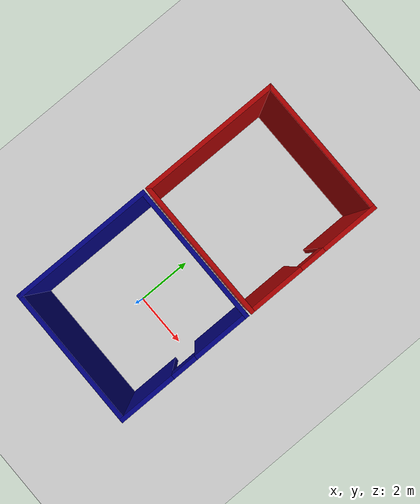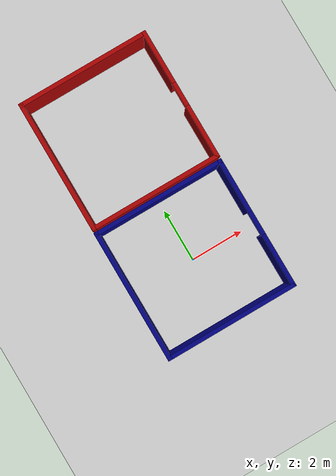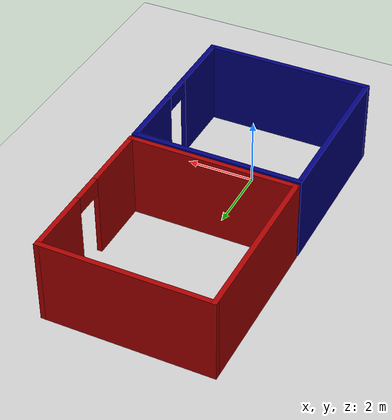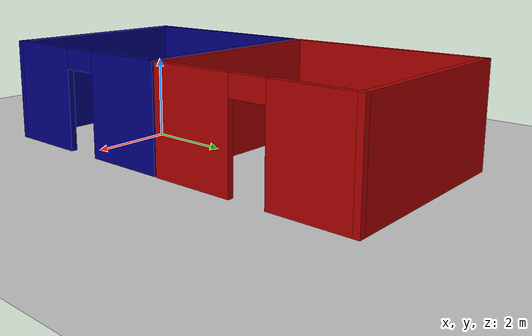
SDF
<sdf version="1.6">
 <world name="default">
  <model name="ground_plane">
   <static>1</static>
   <link name="link">
    <collision name="collision">
     <geometry><plane><normal>0 0 1</normal><size>100 100</size></plane></geometry>
     <surface>
      <contact><collide_bitmask>65535</collide_bitmask></contact>
      <friction><ode><mu>100</mu><mu2>50</mu2></ode></friction>
     </surface>
    </collision>
    <visual name="visual">
     <cast_shadows>0</cast_shadows>
     <geometry><plane><normal>0 0 1</normal><size>100 100</size></plane></geometry>
     <material>
      <script><uri>file://media/materials/scripts/gazebo.material</uri><name>Gazebo/Grey</name></script>
     </material>
    </visual>
   </link>
  </model>
  <light name="sun" type="directional">
   <pose>0 0 10 0 -0 0</pose>
   <diffuse>0.8 0.8 0.8 1</diffuse>
   <specular>0.2 0.2 0.2 1</specular>
   <attenuation>
    <range>1000</range>
    <constant>0.9</constant>
    <linear>0.01</linear>
    <quadratic>0.001</quadratic>
   </attenuation>
   <direction>-0.5 0.1 -0.9</direction>
  </light>
  <gravity>0 0 -9.8</gravity>
  <magnetic_field>6e-06 2.3e-05 -4.2e-05</magnetic_field>
  <atmosphere type="adiabatic"/>
  <physics name="default_physics" default="0" type="ode">
   <max_step_size>0.001</max_step_size>
   <real_time_factor>1</real_time_factor>
   <real_time_update_rate>1000</real_time_update_rate>
  </physics>
  <scene><ambient>0.4 0.4 0.4 1</ambient><background>0.7 0.7 0.7 1</background><shadows>1</shadows></scene>
  <spherical_coordinates>
   <surface_model>EARTH_WGS84</surface_model>
   <latitude_deg>0</latitude_deg>
   <longitude_deg>0</longitude_deg>
   <elevation>0</elevation>
   <heading_deg>0</heading_deg>
  </spherical_coordinates>
  <model name="blue_5m_room">
   <link name="Wall_0">
    <collision name="Wall_0_Collision">
     <geometry><box><size>5 0.15 2.5</size></box></geometry>
     <pose>0 0 1.25 0 -0 0</pose>
    </collision>
    <visual name="Wall_0_Visual">
     <pose>0 0 1.25 0 -0 0</pose>
     <geometry><box><size>5 0.15 2.5</size></box></geometry>
     <material>
      <script><uri>file://media/materials/scripts/gazebo.material</uri><name>Gazebo/Grey</name></script>
      <ambient>0 0 0.498039 1</ambient>
     </material>
     <meta><layer>0</layer></meta>
    </visual>
    <pose>-2.425 0 0 0 -0 1.5708</pose>
   </link>
   <link name="Wall_1">
    <collision name="Wall_1_Collision">
     <geometry><box><size>5 0.15 2.5</size></box></geometry>
     <pose>0 0 1.25 0 -0 0</pose>
    </collision>
    <visual name="Wall_1_Visual">
     <pose>0 0 1.25 0 -0 0</pose>
     <geometry><box><size>5 0.15 2.5</size></box></geometry>
     <material>
      <script><uri>file://media/materials/scripts/gazebo.material</uri><name>Gazebo/Grey</name></script>
      <ambient>0 0 0.498039 1</ambient>
     </material>
     <meta><layer>0</layer></meta>
    </visual>
    <pose>0 2.425 0 0 -0 0</pose>
   </link>
   <link name="Wall_2">
    <pose>2.425 0 0 0 0 -1.5708</pose>
    <visual name="Wall_2_Visual_0">
     <pose>-1.47363 0 1.25 0 -0 0</pose>
     <geometry><box><size>2.05274 0.15 2.5</size></box></geometry>
     <material>
      <script><uri>file://media/materials/scripts/gazebo.material</uri><name>Gazebo/Grey</name></script>
      <ambient>0 0 0.498039 1</ambient>
     </material>
     <meta><layer>0</layer></meta>
    </visual>
    <collision name="Wall_2_Collision_0">
     <geometry><box><size>2.05274 0.15 2.5</size></box></geometry>
     <pose>-1.47363 0 1.25 0 -0 0</pose>
    </collision>
    <visual name="Wall_2_Visual_1">
     <pose>1.47637 0 1.25 0 -0 0</pose>
     <geometry><box><size>2.04726 0.15 2.5</size></box></geometry>
     <material>
      <script><uri>file://media/materials/scripts/gazebo.material</uri><name>Gazebo/Grey</name></script>
      <ambient>0 0 0.498039 1</ambient>
     </material>
     <meta><layer>0</layer></meta>
    </visual>
    <collision name="Wall_2_Collision_1">
     <geometry><box><size>2.04726 0.15 2.5</size></box></geometry>
     <pose>1.47637 0 1.25 0 -0 0</pose>
    </collision>
    <visual name="Wall_2_Visual_2">
     <pose>0.00274 0 2.25 0 -0 0</pose>
     <geometry><box><size>0.9 0.15 0.5</size></box></geometry>
     <material>
      <script><uri>file://media/materials/scripts/gazebo.material</uri><name>Gazebo/Grey</name></script>
      <ambient>0 0 0.498039 1</ambient>
     </material>
     <meta><layer>0</layer></meta>
    </visual>
    <collision name="Wall_2_Collision_2">
     <geometry><box><size>0.9 0.15 0.5</size></box></geometry>
     <pose>0.00274 0 2.25 0 -0 0</pose>
    </collision>
   </link>
   <link name="Wall_3">
    <collision name="Wall_3_Collision">
     <geometry><box><size>5 0.15 2.5</size></box></geometry>
     <pose>0 0 1.25 0 -0 0</pose>
    </collision>
    <visual name="Wall_3_Visual">
     <pose>0 0 1.25 0 -0 0</pose>
     <geometry><box><size>5 0.15 2.5</size></box></geometry>
     <material>
      <script><uri>file://media/materials/scripts/gazebo.material</uri><name>Gazebo/Grey</name></script>
      <ambient>0 0 0.498039 1</ambient>
     </material>
     <meta><layer>0</layer></meta>
    </visual>
    <pose>0 -2.425 0 0 -0 3.14159</pose>
   </link>
   <static>1</static>
  </model>
  <model name="red_5m_room">
   <pose>0.00931 5.0624 0 0 -0 0</pose>
   <link name="Wall_5">
    <collision name="Wall_5_Collision">
     <geometry><box><size>5 0.15 2.5</size></box></geometry>
     <pose>0 0 1.25 0 -0 0</pose>
    </collision>
    <visual name="Wall_5_Visual">
     <pose>0 0 1.25 0 -0 0</pose>
     <geometry><box><size>5 0.15 2.5</size></box></geometry>
     <material>
      <script><uri>file://media/materials/scripts/gazebo.material</uri><name>Gazebo/Grey</name></script>
      <ambient>0.666667 0 0 1</ambient>
     </material>
     <meta><layer>0</layer></meta>
    </visual>
    <pose>-2.425 0 0 0 0 -1.5708</pose>
   </link>
   <link name="Wall_6">
    <collision name="Wall_6_Collision">
     <geometry><box><size>5 0.15 2.5</size></box></geometry>
     <pose>0 0 1.25 0 -0 0</pose>
    </collision>
    <visual name="Wall_6_Visual">
     <pose>0 0 1.25 0 -0 0</pose>
     <geometry><box><size>5 0.15 2.5</size></box></geometry>
     <material>
      <script><uri>file://media/materials/scripts/gazebo.material</uri><name>Gazebo/Grey</name></script>
      <ambient>0.666667 0 0 1</ambient>
     </material>
     <meta><layer>0</layer></meta>
    </visual>
    <pose>0 -2.425 0 0 -0 0</pose>
   </link>
   <link name="Wall_7">
    <pose>2.425 0 0 0 -0 1.5708</pose>
    <visual name="Wall_7_Visual_0">
     <pose>-1.46931 0 1.25 0 -0 0</pose>
     <geometry><box><size>2.06137 0.15 2.5</size></box></geometry>
     <material>
      <script><uri>file://media/materials/scripts/gazebo.material</uri><name>Gazebo/Grey</name></script>
      <ambient>0.666667 0 0 1</ambient>
     </material>
     <meta><layer>0</layer></meta>
    </visual>
    <collision name="Wall_7_Collision_0">
     <geometry><box><size>2.06137 0.15 2.5</size></box></geometry>
     <pose>-1.46931 0 1.25 0 -0 0</pose>
    </collision>
    <visual name="Wall_7_Visual_1">
     <pose>1.48069 0 1.25 0 -0 0</pose>
     <geometry><box><size>2.03863 0.15 2.5</size></box></geometry>
     <material>
      <script><uri>file://media/materials/scripts/gazebo.material</uri><name>Gazebo/Grey</name></script>
      <ambient>0.666667 0 0 1</ambient>
     </material>
     <meta><layer>0</layer></meta>
    </visual>
    <collision name="Wall_7_Collision_1">
     <geometry><box><size>2.03863 0.15 2.5</size></box></geometry>
     <pose>1.48069 0 1.25 0 -0 0</pose>
    </collision>
    <visual name="Wall_7_Visual_2">
     <pose>0.011371 0 2.25 0 -0 0</pose>
     <geometry><box><size>0.9 0.15 0.5</size></box></geometry>
     <material>
      <script><uri>file://media/materials/scripts/gazebo.material</uri><name>Gazebo/Grey</name></script>
      <ambient>0.666667 0 0 1</ambient>
     </material>
     <meta><layer>0</layer></meta>
    </visual>
    <collision name="Wall_7_Collision_2">
     <geometry><box><size>0.9 0.15 0.5</size></box></geometry>
     <pose>0.011371 0 2.25 0 -0 0</pose>
    </collision>
   </link>
   <link name="Wall_8">
    <collision name="Wall_8_Collision">
     <geometry><box><size>5 0.15 2.5</size></box></geometry>
     <pose>0 0 1.25 0 -0 0</pose>
    </collision>
    <visual name="Wall_8_Visual">
     <pose>0 0 1.25 0 -0 0</pose>
     <geometry><box><size>5 0.15 2.5</size></box></geometry>
     <material>
      <script><uri>file://media/materials/scripts/gazebo.material</uri><name>Gazebo/Grey</name></script>
      <ambient>0.666667 0 0 1</ambient>
     </material>
     <meta><layer>0</layer></meta>
    </visual>
    <pose>0 2.425 0 0 -0 3.14159</pose>
   </link>
   <static>1</static>
  </model>
 </world>
</sdf>
